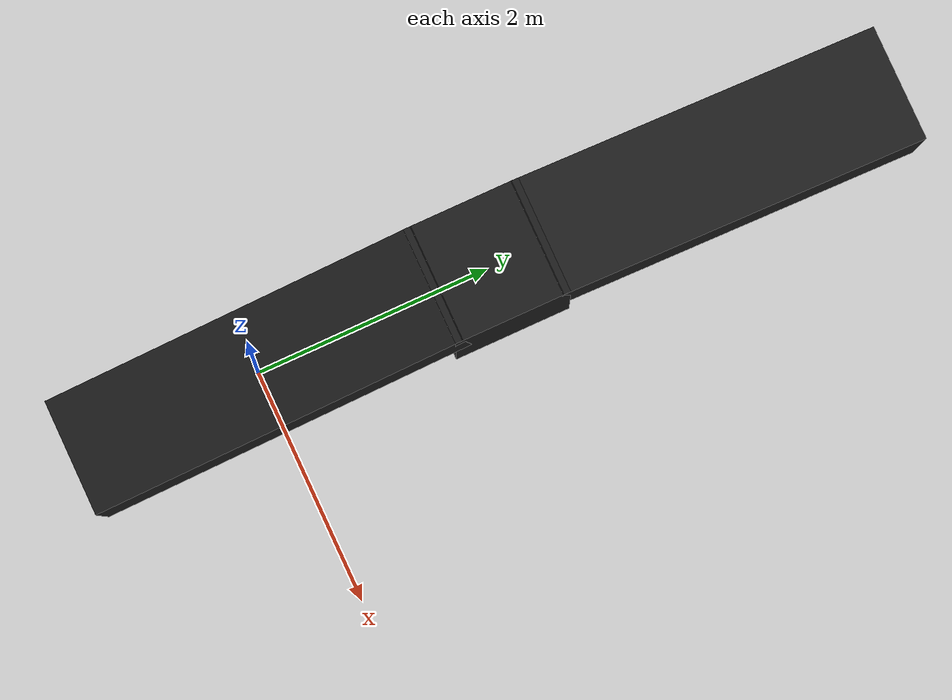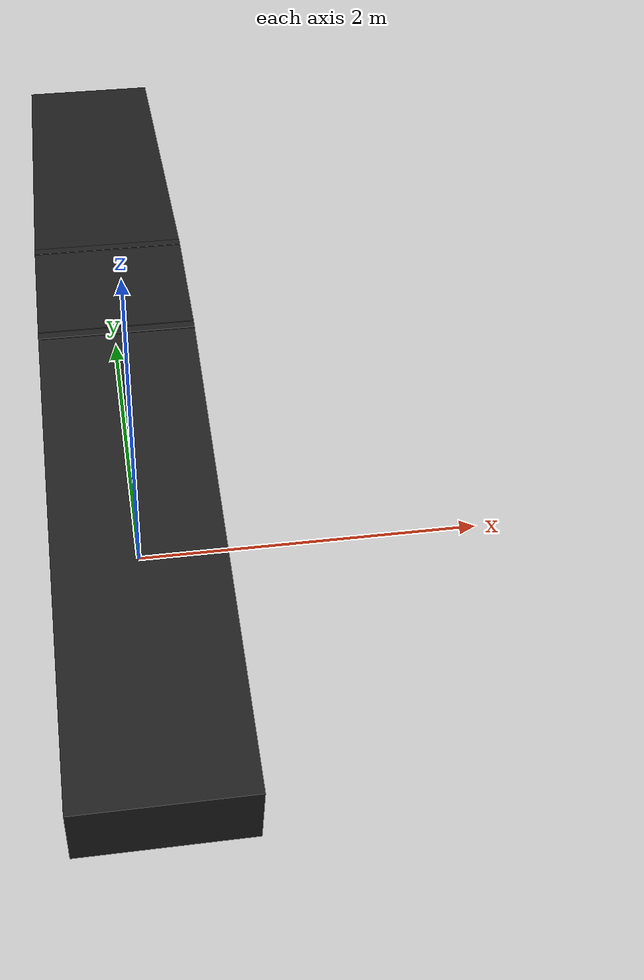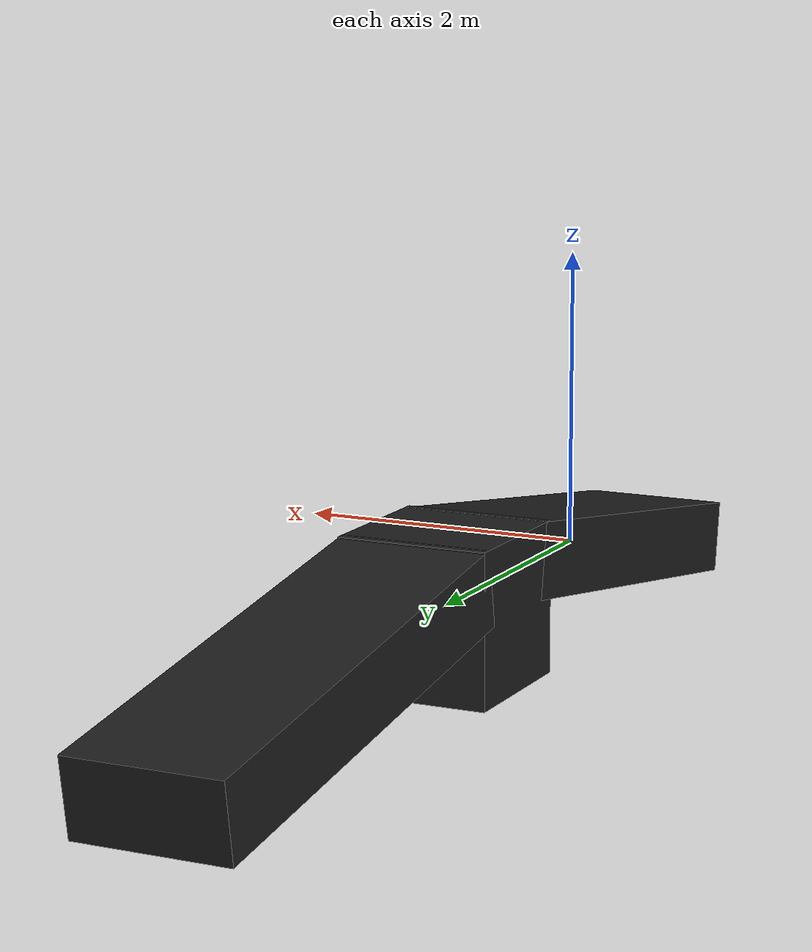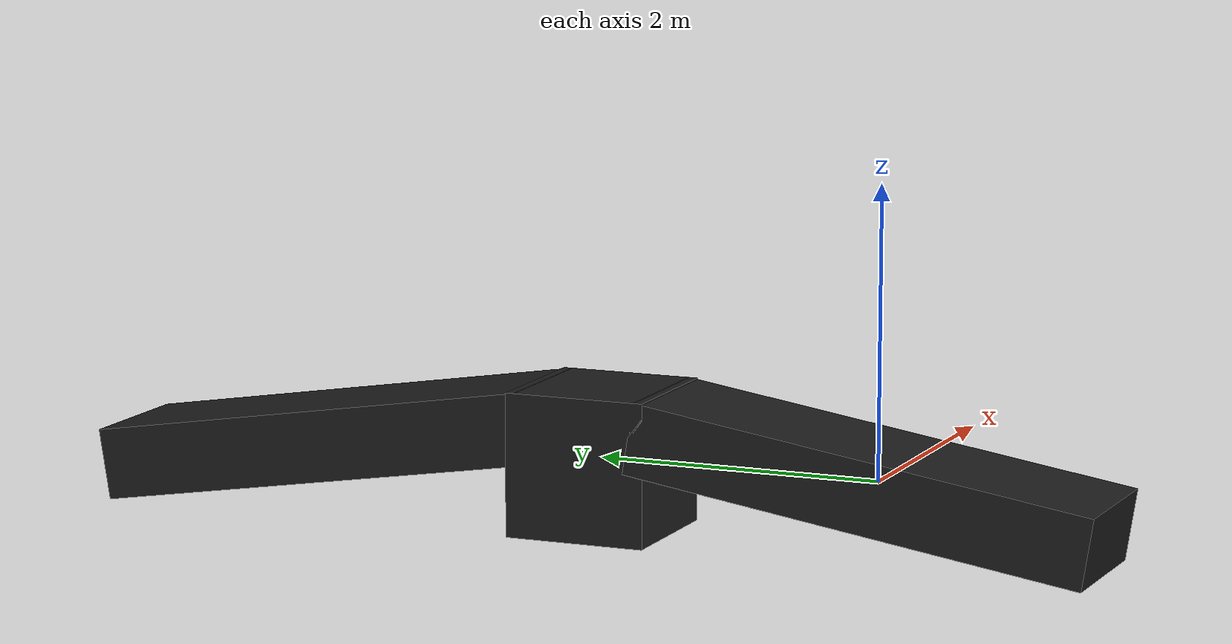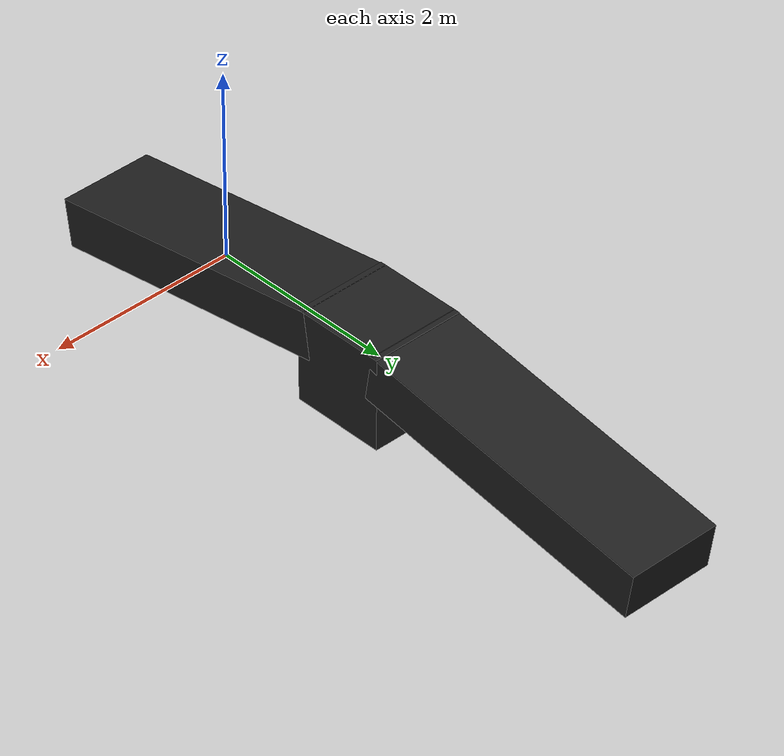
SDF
<?xml version="1.0"?>
<sdf version="1.4">
  <model name="ramp_15">
    <static>true</static>
    <pose>0 0 0 0 0 0</pose>
    <link name="link">
      <collision name="up_collision">
        <pose>0 0 0 0.157079633 0 0</pose>
        <geometry>
          <box>
            <size>1 3.25 0.5</size>
          </box>
        </geometry>
      </collision>

        <visual name='up_visual'>
         <pose>0 0 0 0.157079633 0 0 </pose>
          <geometry>
            <box>
              <size>1 3.25 0.5</size>
            </box>
          </geometry>
          <material>
            <script>
              <uri>file://media/materials/scripts/gazebo.material</uri>
              <name>Gazebo/FlatBlack</name>
            </script>
          </material>
        </visual>

      <collision name="mid_collision">
        <pose>0 2 0 0 0 0</pose>
        <geometry>
          <box>
            <size>1 1 1</size>
          </box>
        </geometry>
      </collision>

        <visual name='mid_visual'>
         <pose>0 2 0 0 0 0 </pose>
          <geometry>
            <box>
              <size>1 1 1</size>
            </box>
          </geometry>
          <material>
            <script>
              <uri>file://media/materials/scripts/gazebo.material</uri>
              <name>Gazebo/FlatBlack</name>
            </script>
          </material>
        </visual>

      <collision name="down_collision">
        <pose>0 4 -0 -0.157079633 0 0</pose>
        <geometry>
          <box>
            <size>1 3.25 0.5</size>
          </box>
        </geometry>
      </collision>

        <visual name='down_visual'>
         <pose>0 4 0 -0.157079633 0 0 </pose>
          <geometry>
            <box>
              <size>1 3.25 0.5</size>
            </box>
          </geometry>
        <material>
            <script>
              <uri>file://media/materials/scripts/gazebo.material</uri>
              <name>Gazebo/FlatBlack</name>
            </script>
          </material>
        </visual>

    </link>
  </model>
</sdf>
